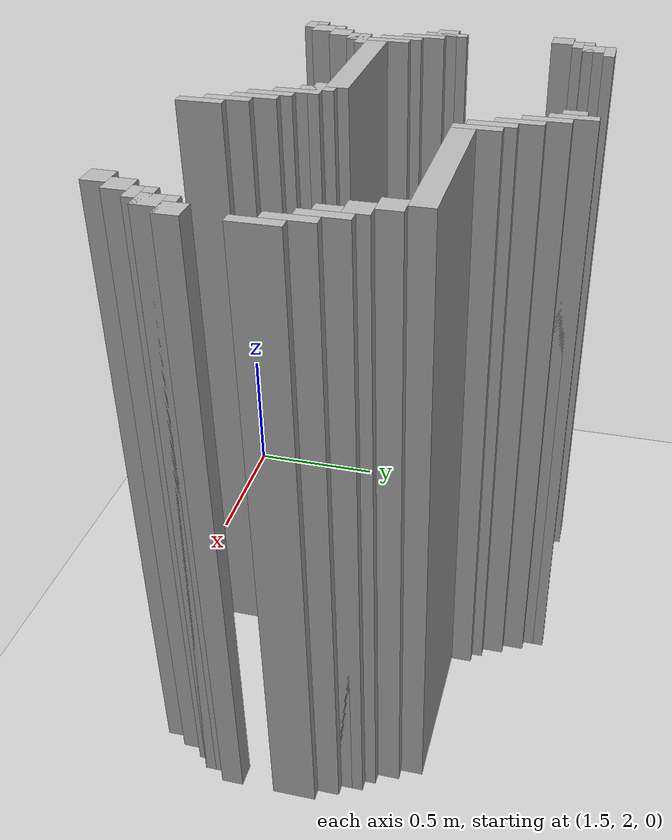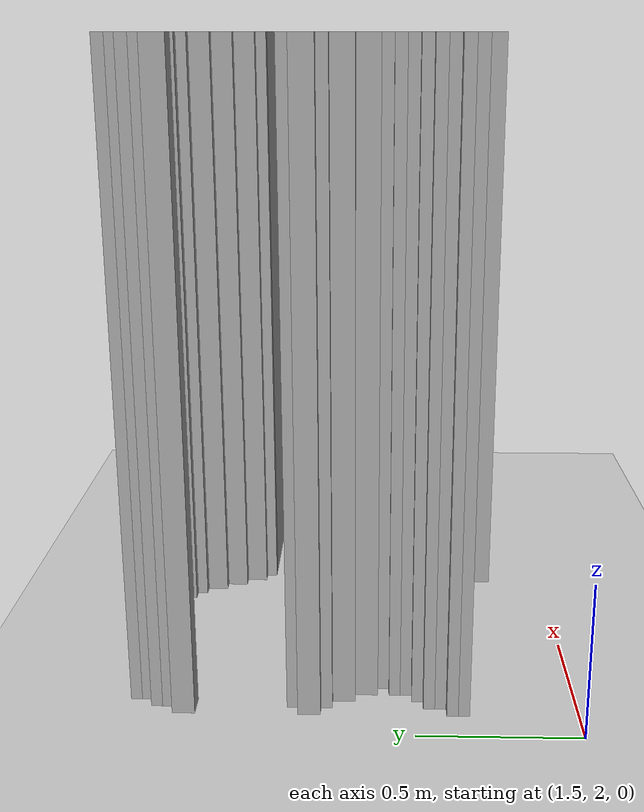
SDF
<sdf version="1.6">
 <world name="slam_world">
  <model name="ground_plane">
   <static>true</static>
   <link name="link">
    <collision name="collision">
     <geometry><plane><normal>0 0 1</normal><size>100 100</size></plane></geometry>
    </collision>
    <visual name="visual">
     <geometry><plane><normal>0 0 1</normal><size>100 100</size></plane></geometry>
     <material>
      <ambient>0.8 0.8 0.8 1</ambient>
      <diffuse>0.8 0.8 0.8 1</diffuse>
      <specular>0.8 0.8 0.8 1</specular>
     </material>
    </visual>
   </link>
  </model>
  <model name="wall_4627">
   <static>true</static>
   <pose>1.722737819025522 3.358468677494199 1.0 0 0 0</pose>
   <link name="link">
    <collision name="collision">
     <geometry><box><size>0.10440835266821345 0.03480278422273782 2.0</size></box></geometry>
    </collision>
    <visual name="visual">
     <geometry><box><size>0.10440835266821345 0.03480278422273782 2.0</size></box></geometry>
     <material><ambient>0.5 0.5 0.5 1</ambient><diffuse>0.7 0.7 0.7 1</diffuse></material>
    </visual>
   </link>
  </model>
  <model name="wall_4628">
   <static>true</static>
   <pose>2.3491879350348026 3.3062645011600926 1.0 0 0 0</pose>
   <link name="link">
    <collision name="collision">
     <geometry><box><size>0.03480278422273782 0.13921113689095127 2.0</size></box></geometry>
    </collision>
    <visual name="visual">
     <geometry><box><size>0.03480278422273782 0.13921113689095127 2.0</size></box></geometry>
     <material><ambient>0.5 0.5 0.5 1</ambient><diffuse>0.7 0.7 0.7 1</diffuse></material>
    </visual>
   </link>
  </model>
  <model name="wall_4644">
   <static>true</static>
   <pose>1.705336426914153 3.3062645011600926 1.0 0 0 0</pose>
   <link name="link">
    <collision name="collision">
     <geometry><box><size>0.06960556844547564 0.06960556844547564 2.0</size></box></geometry>
    </collision>
    <visual name="visual">
     <geometry><box><size>0.06960556844547564 0.06960556844547564 2.0</size></box></geometry>
     <material><ambient>0.5 0.5 0.5 1</ambient><diffuse>0.7 0.7 0.7 1</diffuse></material>
    </visual>
   </link>
  </model>
  <model name="wall_4645">
   <static>true</static>
   <pose>2.331786542923434 3.3062645011600926 1.0 0 0 0</pose>
   <link name="link">
    <collision name="collision">
     <geometry><box><size>0.06960556844547564 0.06960556844547564 2.0</size></box></geometry>
    </collision>
    <visual name="visual">
     <geometry><box><size>0.06960556844547564 0.06960556844547564 2.0</size></box></geometry>
     <material><ambient>0.5 0.5 0.5 1</ambient><diffuse>0.7 0.7 0.7 1</diffuse></material>
    </visual>
   </link>
  </model>
  <model name="wall_4661">
   <static>true</static>
   <pose>1.6879350348027842 3.288863109048724 1.0 0 0 0</pose>
   <link name="link">
    <collision name="collision">
     <geometry><box><size>0.10440835266821345 0.03480278422273782 2.0</size></box></geometry>
    </collision>
    <visual name="visual">
     <geometry><box><size>0.10440835266821345 0.03480278422273782 2.0</size></box></geometry>
     <material><ambient>0.5 0.5 0.5 1</ambient><diffuse>0.7 0.7 0.7 1</diffuse></material>
    </visual>
   </link>
  </model>
  <model name="wall_4662">
   <static>true</static>
   <pose>2.3839907192575405 3.236658932714617 1.0 0 0 0</pose>
   <link name="link">
    <collision name="collision">
     <geometry><box><size>0.03480278422273782 0.13921113689095127 2.0</size></box></geometry>
    </collision>
    <visual name="visual">
     <geometry><box><size>0.03480278422273782 0.13921113689095127 2.0</size></box></geometry>
     <material><ambient>0.5 0.5 0.5 1</ambient><diffuse>0.7 0.7 0.7 1</diffuse></material>
    </visual>
   </link>
  </model>
  <model name="wall_4677">
   <static>true</static>
   <pose>1.6705336426914152 3.254060324825986 1.0 0 0 0</pose>
   <link name="link">
    <collision name="collision">
     <geometry><box><size>0.06960556844547564 0.03480278422273782 2.0</size></box></geometry>
    </collision>
    <visual name="visual">
     <geometry><box><size>0.06960556844547564 0.03480278422273782 2.0</size></box></geometry>
     <material><ambient>0.5 0.5 0.5 1</ambient><diffuse>0.7 0.7 0.7 1</diffuse></material>
    </visual>
   </link>
  </model>
  <model name="wall_4686">
   <static>true</static>
   <pose>1.6357308584686774 3.201856148491879 1.0 0 0 0</pose>
   <link name="link">
    <collision name="collision">
     <geometry><box><size>0.06960556844547564 0.06960556844547564 2.0</size></box></geometry>
    </collision>
    <visual name="visual">
     <geometry><box><size>0.06960556844547564 0.06960556844547564 2.0</size></box></geometry>
     <material><ambient>0.5 0.5 0.5 1</ambient><diffuse>0.7 0.7 0.7 1</diffuse></material>
    </visual>
   </link>
  </model>
  <model name="wall_4687">
   <static>true</static>
   <pose>2.4187935034802783 3.167053364269141 1.0 0 0 0</pose>
   <link name="link">
    <collision name="collision">
     <geometry><box><size>0.03480278422273782 0.13921113689095127 2.0</size></box></geometry>
    </collision>
    <visual name="visual">
     <geometry><box><size>0.03480278422273782 0.13921113689095127 2.0</size></box></geometry>
     <material><ambient>0.5 0.5 0.5 1</ambient><diffuse>0.7 0.7 0.7 1</diffuse></material>
    </visual>
   </link>
  </model>
  <model name="wall_4704">
   <static>true</static>
   <pose>2.453596287703016 3.097447795823666 1.0 0 0 0</pose>
   <link name="link">
    <collision name="collision">
     <geometry><box><size>0.03480278422273782 0.13921113689095127 2.0</size></box></geometry>
    </collision>
    <visual name="visual">
     <geometry><box><size>0.03480278422273782 0.13921113689095127 2.0</size></box></geometry>
     <material><ambient>0.5 0.5 0.5 1</ambient><diffuse>0.7 0.7 0.7 1</diffuse></material>
    </visual>
   </link>
  </model>
  <model name="wall_4721">
   <static>true</static>
   <pose>2.488399071925754 3.062645011600928 1.0 0 0 0</pose>
   <link name="link">
    <collision name="collision">
     <geometry><box><size>0.03480278422273782 0.13921113689095127 2.0</size></box></geometry>
    </collision>
    <visual name="visual">
     <geometry><box><size>0.03480278422273782 0.13921113689095127 2.0</size></box></geometry>
     <material><ambient>0.5 0.5 0.5 1</ambient><diffuse>0.7 0.7 0.7 1</diffuse></material>
    </visual>
   </link>
  </model>
  <model name="wall_4745">
   <static>true</static>
   <pose>2.7668213457076565 3.02784222737819 1.0 0 0 0</pose>
   <link name="link">
    <collision name="collision">
     <geometry><box><size>0.5220417633410672 0.06960556844547564 2.0</size></box></geometry>
    </collision>
    <visual name="visual">
     <geometry><box><size>0.5220417633410672 0.06960556844547564 2.0</size></box></geometry>
     <material><ambient>0.5 0.5 0.5 1</ambient><diffuse>0.7 0.7 0.7 1</diffuse></material>
    </visual>
   </link>
  </model>
  <model name="wall_4766">
   <static>true</static>
   <pose>3.02784222737819 2.9582366589327145 1.0 0 0 0</pose>
   <link name="link">
    <collision name="collision">
     <geometry><box><size>0.06960556844547564 0.06960556844547564 2.0</size></box></geometry>
    </collision>
    <visual name="visual">
     <geometry><box><size>0.06960556844547564 0.06960556844547564 2.0</size></box></geometry>
     <material><ambient>0.5 0.5 0.5 1</ambient><diffuse>0.7 0.7 0.7 1</diffuse></material>
    </visual>
   </link>
  </model>
  <model name="wall_4786">
   <static>true</static>
   <pose>3.062645011600928 2.8886310904872388 1.0 0 0 0</pose>
   <link name="link">
    <collision name="collision">
     <geometry><box><size>0.06960556844547564 0.06960556844547564 2.0</size></box></geometry>
    </collision>
    <visual name="visual">
     <geometry><box><size>0.06960556844547564 0.06960556844547564 2.0</size></box></geometry>
     <material><ambient>0.5 0.5 0.5 1</ambient><diffuse>0.7 0.7 0.7 1</diffuse></material>
    </visual>
   </link>
  </model>
  <model name="wall_4798">
   <static>true</static>
   <pose>1.6531322505800463 2.819025522041763 1.0 0 0 0</pose>
   <link name="link">
    <collision name="collision">
     <geometry><box><size>0.03480278422273782 0.13921113689095127 2.0</size></box></geometry>
    </collision>
    <visual name="visual">
     <geometry><box><size>0.03480278422273782 0.13921113689095127 2.0</size></box></geometry>
     <material><ambient>0.5 0.5 0.5 1</ambient><diffuse>0.7 0.7 0.7 1</diffuse></material>
    </visual>
   </link>
  </model>
  <model name="wall_4799">
   <static>true</static>
   <pose>3.1148491879350346 2.819025522041763 1.0 0 0 0</pose>
   <link name="link">
    <collision name="collision">
     <geometry><box><size>0.03480278422273782 0.13921113689095127 2.0</size></box></geometry>
    </collision>
    <visual name="visual">
     <geometry><box><size>0.03480278422273782 0.13921113689095127 2.0</size></box></geometry>
     <material><ambient>0.5 0.5 0.5 1</ambient><diffuse>0.7 0.7 0.7 1</diffuse></material>
    </visual>
   </link>
  </model>
  <model name="wall_4811">
   <static>true</static>
   <pose>1.6357308584686774 2.819025522041763 1.0 0 0 0</pose>
   <link name="link">
    <collision name="collision">
     <geometry><box><size>0.06960556844547564 0.06960556844547564 2.0</size></box></geometry>
    </collision>
    <visual name="visual">
     <geometry><box><size>0.06960556844547564 0.06960556844547564 2.0</size></box></geometry>
     <material><ambient>0.5 0.5 0.5 1</ambient><diffuse>0.7 0.7 0.7 1</diffuse></material>
    </visual>
   </link>
  </model>
  <model name="wall_4812">
   <static>true</static>
   <pose>3.097447795823666 2.819025522041763 1.0 0 0 0</pose>
   <link name="link">
    <collision name="collision">
     <geometry><box><size>0.06960556844547564 0.06960556844547564 2.0</size></box></geometry>
    </collision>
    <visual name="visual">
     <geometry><box><size>0.06960556844547564 0.06960556844547564 2.0</size></box></geometry>
     <material><ambient>0.5 0.5 0.5 1</ambient><diffuse>0.7 0.7 0.7 1</diffuse></material>
    </visual>
   </link>
  </model>
  <model name="wall_4824">
   <static>true</static>
   <pose>1.6879350348027842 2.7494199535962878 1.0 0 0 0</pose>
   <link name="link">
    <collision name="collision">
     <geometry><box><size>0.03480278422273782 0.13921113689095127 2.0</size></box></geometry>
    </collision>
    <visual name="visual">
     <geometry><box><size>0.03480278422273782 0.13921113689095127 2.0</size></box></geometry>
     <material><ambient>0.5 0.5 0.5 1</ambient><diffuse>0.7 0.7 0.7 1</diffuse></material>
    </visual>
   </link>
  </model>
  <model name="wall_4825">
   <static>true</static>
   <pose>3.1496519721577725 2.7494199535962878 1.0 0 0 0</pose>
   <link name="link">
    <collision name="collision">
     <geometry><box><size>0.03480278422273782 0.13921113689095127 2.0</size></box></geometry>
    </collision>
    <visual name="visual">
     <geometry><box><size>0.03480278422273782 0.13921113689095127 2.0</size></box></geometry>
     <material><ambient>0.5 0.5 0.5 1</ambient><diffuse>0.7 0.7 0.7 1</diffuse></material>
    </visual>
   </link>
  </model>
  <model name="wall_4841">
   <static>true</static>
   <pose>1.722737819025522 2.679814385150812 1.0 0 0 0</pose>
   <link name="link">
    <collision name="collision">
     <geometry><box><size>0.03480278422273782 0.13921113689095127 2.0</size></box></geometry>
    </collision>
    <visual name="visual">
     <geometry><box><size>0.03480278422273782 0.13921113689095127 2.0</size></box></geometry>
     <material><ambient>0.5 0.5 0.5 1</ambient><diffuse>0.7 0.7 0.7 1</diffuse></material>
    </visual>
   </link>
  </model>
  <model name="wall_4842">
   <static>true</static>
   <pose>3.1844547563805103 2.679814385150812 1.0 0 0 0</pose>
   <link name="link">
    <collision name="collision">
     <geometry><box><size>0.03480278422273782 0.13921113689095127 2.0</size></box></geometry>
    </collision>
    <visual name="visual">
     <geometry><box><size>0.03480278422273782 0.13921113689095127 2.0</size></box></geometry>
     <material><ambient>0.5 0.5 0.5 1</ambient><diffuse>0.7 0.7 0.7 1</diffuse></material>
    </visual>
   </link>
  </model>
  <model name="wall_4854">
   <static>true</static>
   <pose>1.75754060324826 2.6102088167053363 1.0 0 0 0</pose>
   <link name="link">
    <collision name="collision">
     <geometry><box><size>0.03480278422273782 0.2088167053364269 2.0</size></box></geometry>
    </collision>
    <visual name="visual">
     <geometry><box><size>0.03480278422273782 0.2088167053364269 2.0</size></box></geometry>
     <material><ambient>0.5 0.5 0.5 1</ambient><diffuse>0.7 0.7 0.7 1</diffuse></material>
    </visual>
   </link>
  </model>
  <model name="wall_4871">
   <static>true</static>
   <pose>2.0185614849187936 2.6102088167053363 1.0 0 0 0</pose>
   <link name="link">
    <collision name="collision">
     <geometry><box><size>0.4872389791183295 0.06960556844547564 2.0</size></box></geometry>
    </collision>
    <visual name="visual">
     <geometry><box><size>0.4872389791183295 0.06960556844547564 2.0</size></box></geometry>
     <material><ambient>0.5 0.5 0.5 1</ambient><diffuse>0.7 0.7 0.7 1</diffuse></material>
    </visual>
   </link>
  </model>
  <model name="wall_4885">
   <static>true</static>
   <pose>2.279582366589327 2.5580046403712298 1.0 0 0 0</pose>
   <link name="link">
    <collision name="collision">
     <geometry><box><size>0.03480278422273782 0.10440835266821345 2.0</size></box></geometry>
    </collision>
    <visual name="visual">
     <geometry><box><size>0.03480278422273782 0.10440835266821345 2.0</size></box></geometry>
     <material><ambient>0.5 0.5 0.5 1</ambient><diffuse>0.7 0.7 0.7 1</diffuse></material>
    </visual>
   </link>
  </model>
  <model name="wall_4897">
   <static>true</static>
   <pose>1.75754060324826 2.5580046403712298 1.0 0 0 0</pose>
   <link name="link">
    <collision name="collision">
     <geometry><box><size>0.10440835266821345 0.03480278422273782 2.0</size></box></geometry>
    </collision>
    <visual name="visual">
     <geometry><box><size>0.10440835266821345 0.03480278422273782 2.0</size></box></geometry>
     <material><ambient>0.5 0.5 0.5 1</ambient><diffuse>0.7 0.7 0.7 1</diffuse></material>
    </visual>
   </link>
  </model>
  <model name="wall_4898">
   <static>true</static>
   <pose>2.279582366589327 2.5580046403712298 1.0 0 0 0</pose>
   <link name="link">
    <collision name="collision">
     <geometry><box><size>0.10440835266821345 0.03480278422273782 2.0</size></box></geometry>
    </collision>
    <visual name="visual">
     <geometry><box><size>0.10440835266821345 0.03480278422273782 2.0</size></box></geometry>
     <material><ambient>0.5 0.5 0.5 1</ambient><diffuse>0.7 0.7 0.7 1</diffuse></material>
    </visual>
   </link>
  </model>
  <model name="wall_4913">
   <static>true</static>
   <pose>1.740139211136891 2.523201856148492 1.0 0 0 0</pose>
   <link name="link">
    <collision name="collision">
     <geometry><box><size>0.06960556844547564 0.03480278422273782 2.0</size></box></geometry>
    </collision>
    <visual name="visual">
     <geometry><box><size>0.06960556844547564 0.03480278422273782 2.0</size></box></geometry>
     <material><ambient>0.5 0.5 0.5 1</ambient><diffuse>0.7 0.7 0.7 1</diffuse></material>
    </visual>
   </link>
  </model>
  <model name="wall_4914">
   <static>true</static>
   <pose>2.3143851508120648 2.488399071925754 1.0 0 0 0</pose>
   <link name="link">
    <collision name="collision">
     <geometry><box><size>0.03480278422273782 0.10440835266821345 2.0</size></box></geometry>
    </collision>
    <visual name="visual">
     <geometry><box><size>0.03480278422273782 0.10440835266821345 2.0</size></box></geometry>
     <material><ambient>0.5 0.5 0.5 1</ambient><diffuse>0.7 0.7 0.7 1</diffuse></material>
    </visual>
   </link>
  </model>
  <model name="wall_4924">
   <static>true</static>
   <pose>1.705336426914153 2.470997679814385 1.0 0 0 0</pose>
   <link name="link">
    <collision name="collision">
     <geometry><box><size>0.06960556844547564 0.06960556844547564 2.0</size></box></geometry>
    </collision>
    <visual name="visual">
     <geometry><box><size>0.06960556844547564 0.06960556844547564 2.0</size></box></geometry>
     <material><ambient>0.5 0.5 0.5 1</ambient><diffuse>0.7 0.7 0.7 1</diffuse></material>
    </visual>
   </link>
  </model>
  <model name="wall_4925">
   <static>true</static>
   <pose>2.3491879350348026 2.436194895591647 1.0 0 0 0</pose>
   <link name="link">
    <collision name="collision">
     <geometry><box><size>0.03480278422273782 0.13921113689095127 2.0</size></box></geometry>
    </collision>
    <visual name="visual">
     <geometry><box><size>0.03480278422273782 0.13921113689095127 2.0</size></box></geometry>
     <material><ambient>0.5 0.5 0.5 1</ambient><diffuse>0.7 0.7 0.7 1</diffuse></material>
    </visual>
   </link>
  </model>
  <model name="wall_4926">
   <static>true</static>
   <pose>3.167053364269141 2.470997679814385 1.0 0 0 0</pose>
   <link name="link">
    <collision name="collision">
     <geometry><box><size>0.06960556844547564 0.06960556844547564 2.0</size></box></geometry>
    </collision>
    <visual name="visual">
     <geometry><box><size>0.06960556844547564 0.06960556844547564 2.0</size></box></geometry>
     <material><ambient>0.5 0.5 0.5 1</ambient><diffuse>0.7 0.7 0.7 1</diffuse></material>
    </visual>
   </link>
  </model>
  <model name="wall_4941">
   <static>true</static>
   <pose>1.6879350348027842 2.453596287703016 1.0 0 0 0</pose>
   <link name="link">
    <collision name="collision">
     <geometry><box><size>0.10440835266821345 0.03480278422273782 2.0</size></box></geometry>
    </collision>
    <visual name="visual">
     <geometry><box><size>0.10440835266821345 0.03480278422273782 2.0</size></box></geometry>
     <material><ambient>0.5 0.5 0.5 1</ambient><diffuse>0.7 0.7 0.7 1</diffuse></material>
    </visual>
   </link>
  </model>
  <model name="wall_4942">
   <static>true</static>
   <pose>2.3839907192575405 2.4013921113689096 1.0 0 0 0</pose>
   <link name="link">
    <collision name="collision">
     <geometry><box><size>0.03480278422273782 0.13921113689095127 2.0</size></box></geometry>
    </collision>
    <visual name="visual">
     <geometry><box><size>0.03480278422273782 0.13921113689095127 2.0</size></box></geometry>
     <material><ambient>0.5 0.5 0.5 1</ambient><diffuse>0.7 0.7 0.7 1</diffuse></material>
    </visual>
   </link>
  </model>
  <model name="wall_4943">
   <static>true</static>
   <pose>3.1496519721577725 2.453596287703016 1.0 0 0 0</pose>
   <link name="link">
    <collision name="collision">
     <geometry><box><size>0.10440835266821345 0.03480278422273782 2.0</size></box></geometry>
    </collision>
    <visual name="visual">
     <geometry><box><size>0.10440835266821345 0.03480278422273782 2.0</size></box></geometry>
     <material><ambient>0.5 0.5 0.5 1</ambient><diffuse>0.7 0.7 0.7 1</diffuse></material>
    </visual>
   </link>
  </model>
  <model name="wall_4958">
   <static>true</static>
   <pose>1.6705336426914152 2.4013921113689096 1.0 0 0 0</pose>
   <link name="link">
    <collision name="collision">
     <geometry><box><size>0.06960556844547564 0.06960556844547564 2.0</size></box></geometry>
    </collision>
    <visual name="visual">
     <geometry><box><size>0.06960556844547564 0.06960556844547564 2.0</size></box></geometry>
     <material><ambient>0.5 0.5 0.5 1</ambient><diffuse>0.7 0.7 0.7 1</diffuse></material>
    </visual>
   </link>
  </model>
  <model name="wall_4959">
   <static>true</static>
   <pose>3.1322505800464038 2.4013921113689096 1.0 0 0 0</pose>
   <link name="link">
    <collision name="collision">
     <geometry><box><size>0.06960556844547564 0.06960556844547564 2.0</size></box></geometry>
    </collision>
    <visual name="visual">
     <geometry><box><size>0.06960556844547564 0.06960556844547564 2.0</size></box></geometry>
     <material><ambient>0.5 0.5 0.5 1</ambient><diffuse>0.7 0.7 0.7 1</diffuse></material>
    </visual>
   </link>
  </model>
  <model name="wall_4972">
   <static>true</static>
   <pose>1.6531322505800463 2.3839907192575405 1.0 0 0 0</pose>
   <link name="link">
    <collision name="collision">
     <geometry><box><size>0.10440835266821345 0.03480278422273782 2.0</size></box></geometry>
    </collision>
    <visual name="visual">
     <geometry><box><size>0.10440835266821345 0.03480278422273782 2.0</size></box></geometry>
     <material><ambient>0.5 0.5 0.5 1</ambient><diffuse>0.7 0.7 0.7 1</diffuse></material>
    </visual>
   </link>
  </model>
  <model name="wall_4973">
   <static>true</static>
   <pose>2.4187935034802783 2.331786542923434 1.0 0 0 0</pose>
   <link name="link">
    <collision name="collision">
     <geometry><box><size>0.03480278422273782 0.13921113689095127 2.0</size></box></geometry>
    </collision>
    <visual name="visual">
     <geometry><box><size>0.03480278422273782 0.13921113689095127 2.0</size></box></geometry>
     <material><ambient>0.5 0.5 0.5 1</ambient><diffuse>0.7 0.7 0.7 1</diffuse></material>
    </visual>
   </link>
  </model>
  <model name="wall_4974">
   <static>true</static>
   <pose>3.1148491879350346 2.3839907192575405 1.0 0 0 0</pose>
   <link name="link">
    <collision name="collision">
     <geometry><box><size>0.10440835266821345 0.03480278422273782 2.0</size></box></geometry>
    </collision>
    <visual name="visual">
     <geometry><box><size>0.10440835266821345 0.03480278422273782 2.0</size></box></geometry>
     <material><ambient>0.5 0.5 0.5 1</ambient><diffuse>0.7 0.7 0.7 1</diffuse></material>
    </visual>
   </link>
  </model>
  <model name="wall_4988">
   <static>true</static>
   <pose>1.6357308584686774 2.3491879350348026 1.0 0 0 0</pose>
   <link name="link">
    <collision name="collision">
     <geometry><box><size>0.06960556844547564 0.03480278422273782 2.0</size></box></geometry>
    </collision>
    <visual name="visual">
     <geometry><box><size>0.06960556844547564 0.03480278422273782 2.0</size></box></geometry>
     <material><ambient>0.5 0.5 0.5 1</ambient><diffuse>0.7 0.7 0.7 1</diffuse></material>
    </visual>
   </link>
  </model>
  <model name="wall_4989">
   <static>true</static>
   <pose>3.097447795823666 2.3491879350348026 1.0 0 0 0</pose>
   <link name="link">
    <collision name="collision">
     <geometry><box><size>0.06960556844547564 0.03480278422273782 2.0</size></box></geometry>
    </collision>
    <visual name="visual">
     <geometry><box><size>0.06960556844547564 0.03480278422273782 2.0</size></box></geometry>
     <material><ambient>0.5 0.5 0.5 1</ambient><diffuse>0.7 0.7 0.7 1</diffuse></material>
    </visual>
   </link>
  </model>
  <model name="wall_4999">
   <static>true</static>
   <pose>2.453596287703016 2.262180974477958 1.0 0 0 0</pose>
   <link name="link">
    <collision name="collision">
     <geometry><box><size>0.03480278422273782 0.13921113689095127 2.0</size></box></geometry>
    </collision>
    <visual name="visual">
     <geometry><box><size>0.03480278422273782 0.13921113689095127 2.0</size></box></geometry>
     <material><ambient>0.5 0.5 0.5 1</ambient><diffuse>0.7 0.7 0.7 1</diffuse></material>
    </visual>
   </link>
  </model>
  <model name="wall_5000">
   <static>true</static>
   <pose>3.062645011600928 2.296983758700696 1.0 0 0 0</pose>
   <link name="link">
    <collision name="collision">
     <geometry><box><size>0.06960556844547564 0.06960556844547564 2.0</size></box></geometry>
    </collision>
    <visual name="visual">
     <geometry><box><size>0.06960556844547564 0.06960556844547564 2.0</size></box></geometry>
     <material><ambient>0.5 0.5 0.5 1</ambient><diffuse>0.7 0.7 0.7 1</diffuse></material>
    </visual>
   </link>
  </model>
  <model name="wall_5017">
   <static>true</static>
   <pose>3.02784222737819 2.2273781902552203 1.0 0 0 0</pose>
   <link name="link">
    <collision name="collision">
     <geometry><box><size>0.06960556844547564 0.06960556844547564 2.0</size></box></geometry>
    </collision>
    <visual name="visual">
     <geometry><box><size>0.06960556844547564 0.06960556844547564 2.0</size></box></geometry>
     <material><ambient>0.5 0.5 0.5 1</ambient><diffuse>0.7 0.7 0.7 1</diffuse></material>
    </visual>
   </link>
  </model>
 </world>
</sdf>
